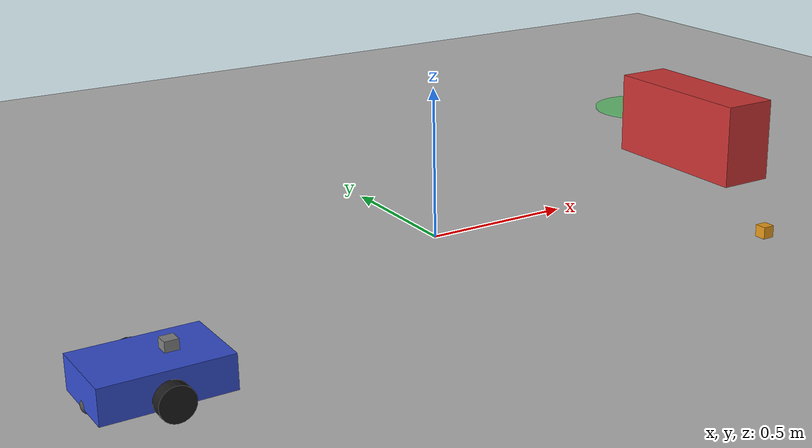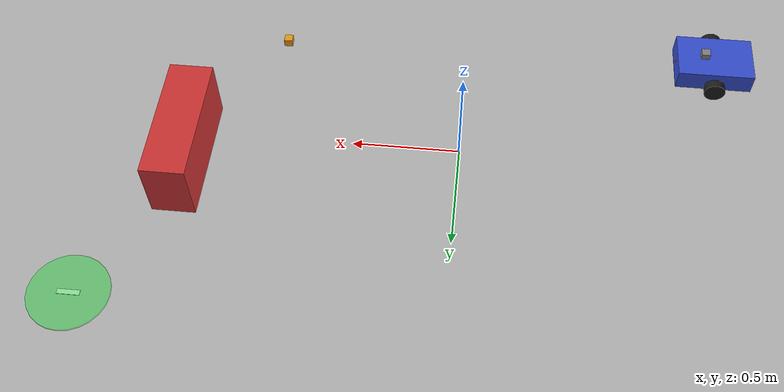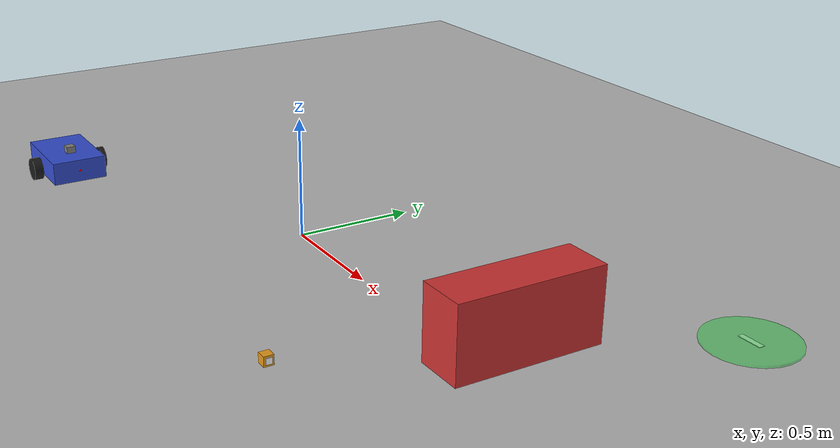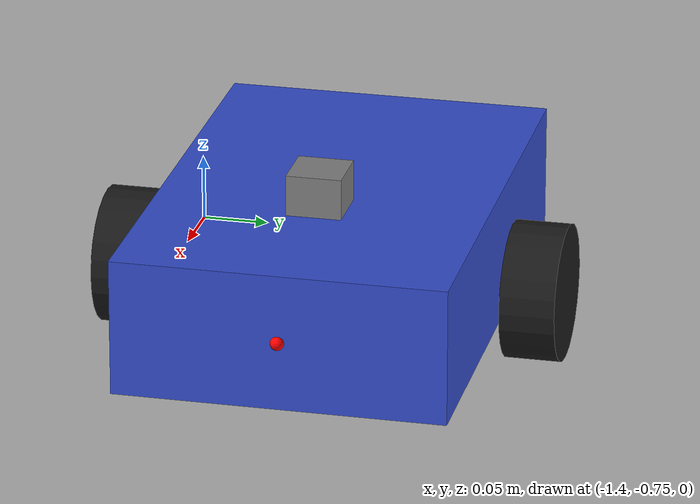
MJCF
<mujoco model="robothon_fetchbot">

  <compiler angle="radian"/>
  <option timestep="0.005" gravity="0 0 -9.81" integrator="implicitfast"/>

  <default>
    <geom contype="1" conaffinity="1" friction="1 0.5 0.5" rgba="0.7 0.7 0.7 1"/>
    <joint damping="0.2"/>
  </default>

  <asset>
    <texture type="2d" name="grid" builtin="checker" rgb1="0.18 0.22 0.28" rgb2="0.28 0.32 0.38"
              width="300" height="300"/>
    <material name="grid_mat" texture="grid" texrepeat="6 6" reflectance="0.1"/>
  </asset>

  <worldbody>
    <light pos="0 0 3" dir="0 0 -1" diffuse="1 1 1"/>
    <camera name="demo_cam" pos="0.2 -3.2 2.6" xyaxes="1 0 0 0 0.65 0.76"/>

    <geom name="floor" type="plane" size="3 3 0.1" material="grid_mat"/>

    <!-- Static obstacle the robot must navigate around -->
    <geom name="obstacle" type="box" pos="1.25 0.15 0.15" size="0.1 0.3 0.15" rgba="0.8 0.2 0.2 1"/>

    <!-- Goal pad: visual only. White arrow shows target cube orientation. -->
    <geom name="goal_marker" type="cylinder" pos="1.6 0.9 0.005" size="0.18 0.005"
          rgba="0.15 0.85 0.25 0.5" contype="0" conaffinity="0"/>
    <geom name="goal_arrow" type="box" pos="1.6 0.9 0.007" size="0.05 0.012 0.001"
          rgba="1 1 1 0.9" contype="0" conaffinity="0"/>

    <!-- Graspable object. cube_marker (white stripe) shows its front face. -->
    <body name="cube" pos="0.9 -0.6 0.02">
      <freejoint name="cube_free"/>
      <geom name="cube_geom" type="box" size="0.02 0.02 0.02" rgba="0.9 0.6 0.1 1"
            friction="1.5 0.6 0.6" mass="0.03"/>
      <geom name="cube_marker" type="box" pos="0.021 0 0" size="0.002 0.012 0.012"
            rgba="1 1 1 1" contype="0" conaffinity="0"/>
    </body>

    <!-- Mobile manipulator: kinematic nested-joint base for stable locomotion -->
    <body name="robot_sled_x" pos="-1.2 -0.6 0.07">
      <inertial pos="0 0 0" mass="0.001" diaginertia="1e-6 1e-6 1e-6"/>
      <joint name="base_x" type="slide" axis="1 0 0" damping="5"/>
      <body name="robot_sled_y">
        <inertial pos="0 0 0" mass="0.001" diaginertia="1e-6 1e-6 1e-6"/>
        <joint name="base_y" type="slide" axis="0 1 0" damping="5"/>
        <body name="robot_base">
          <joint name="base_rz" type="hinge" axis="0 0 1" damping="2"/>
          <geom name="chassis" type="box" size="0.18 0.12 0.05" rgba="0.2 0.3 0.8 1" mass="1.0"
                contype="0" conaffinity="0"/>
          <site name="front_site" pos="0.18 0 0" size="0.005" rgba="1 0 0 1"/>
          <site name="imu_site" pos="0 0 0" size="0.005"/>

          <geom name="caster" type="sphere" pos="-0.16 0 -0.045" size="0.025"
                friction="0.02 0.005 0.0001" rgba="0.3 0.3 0.3 1"/>

          <!-- Wheel bodies: visual only, spin for realism -->
          <body name="wheel_left" pos="0 0.15 -0.02">
            <joint name="wheel_left_j" type="hinge" axis="0 1 0" damping="0.05"/>
            <geom name="wheel_left_geom" type="cylinder" size="0.05 0.02" euler="1.5708 0 0"
                  rgba="0.1 0.1 0.1 1" mass="0.15" contype="0" conaffinity="0"/>
          </body>
          <body name="wheel_right" pos="0 -0.15 -0.02">
            <joint name="wheel_right_j" type="hinge" axis="0 1 0" damping="0.05"/>
            <geom name="wheel_right_geom" type="cylinder" size="0.05 0.02" euler="1.5708 0 0"
                  rgba="0.1 0.1 0.1 1" mass="0.15" contype="0" conaffinity="0"/>
          </body>

          <!-- Vertical lift (extends downward to reach floor) -->
          <body name="lift" pos="0.05 0 0.06">
            <joint name="lift_j" type="slide" axis="0 0 -1" range="0 0.09" damping="1"/>
            <geom name="lift_geom" type="box" size="0.02 0.02 0.05" pos="0 0 -0.03"
                  rgba="0.5 0.5 0.5 1" mass="0.2"/>

            <!-- Wrist: yaw-rotates gripper independently of robot heading -->
            <body name="gripper_base" pos="0 0 -0.08">
              <joint name="wrist_j" type="hinge" axis="0 0 1" range="-1.4 1.4" damping="0.5"/>
              <geom name="gripper_palm" type="box" size="0.03 0.06 0.015" rgba="0.4 0.4 0.4 1" mass="0.1"/>

              <body name="finger_left" pos="0 0.05 0">
                <joint name="finger_left_j" type="slide" axis="0 -1 0" range="0 0.045" damping="1"/>
                <geom name="finger_left_geom" type="box" size="0.01 0.015 0.03" rgba="0.9 0.9 0.2 1"
                      friction="1.5 0.8 0.1" mass="0.03"/>
                <site name="finger_left_site" pos="0 0 -0.025" size="0.008"/>
              </body>

              <body name="finger_right" pos="0 -0.05 0">
                <joint name="finger_right_j" type="slide" axis="0 1 0" range="0 0.045" damping="1"/>
                <geom name="finger_right_geom" type="box" size="0.01 0.015 0.03" rgba="0.9 0.9 0.2 1"
                      friction="1.5 0.8 0.1" mass="0.03"/>
                <site name="finger_right_site" pos="0 0 -0.025" size="0.008"/>
              </body>
            </body>
          </body>
        </body>
      </body>
    </body>
  </worldbody>

  <equality>
    <weld name="grasp_weld" body1="gripper_base" body2="cube"
          relpose="0 0 -0.08 1 0 0 0" active="false"/>
  </equality>

  <actuator>
    <!-- Kinematic locomotion: world-frame x/y and body-frame yaw -->
    <velocity name="base_x_act"  joint="base_x"  kv="120" ctrlrange="-2 2"/>
    <velocity name="base_y_act"  joint="base_y"  kv="120" ctrlrange="-2 2"/>
    <velocity name="base_rz_act" joint="base_rz" kv="5"   ctrlrange="-8 8"/>

    <!-- Wheel spin for visual realism (low kv = visual only) -->
    <velocity name="wheel_left_act"  joint="wheel_left_j"  kv="0.3" ctrlrange="-20 20"/>
    <velocity name="wheel_right_act" joint="wheel_right_j" kv="0.3" ctrlrange="-20 20"/>

    <!-- Manipulation -->
    <position name="lift_act"         joint="lift_j"         kp="80" ctrlrange="0 0.09"/>
    <position name="wrist_act"        joint="wrist_j"        kp="20" ctrlrange="-1.4 1.4"/>
    <position name="finger_left_act"  joint="finger_left_j"  kp="60" ctrlrange="0 0.045"/>
    <position name="finger_right_act" joint="finger_right_j" kp="60" ctrlrange="0 0.045"/>
  </actuator>

  <sensor>
    <touch name="finger_left_touch"  site="finger_left_site"/>
    <touch name="finger_right_touch" site="finger_right_site"/>
    <rangefinder name="front_range" site="front_site" cutoff="2.0"/>
    <gyro        name="base_gyro"   site="imu_site"/>
    <velocimeter name="base_vel"    site="imu_site"/>
    <framepos    name="base_pos"    objtype="body" objname="robot_base"/>
    <framequat   name="base_quat"   objtype="body" objname="robot_base"/>
    <jointpos    name="lift_pos_sensor"  joint="lift_j"/>
    <jointpos    name="wrist_pos_sensor" joint="wrist_j"/>
  </sensor>
</mujoco>
